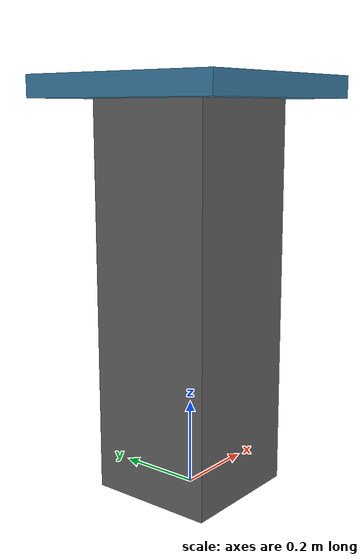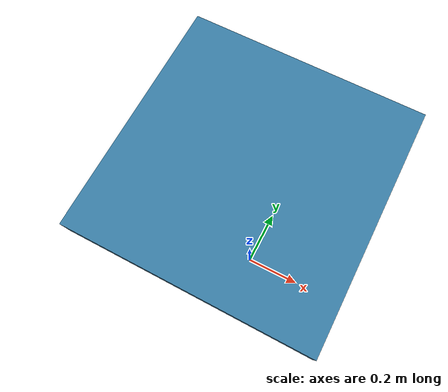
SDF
<?xml version="1.0"?>
<sdf version="1.9">
  <model name="contact_panel">
    <static>true</static>

    <link name="panel">
      <pose>0 0 0.925 0 0 0</pose>
      <collision name="collision">
        <geometry>
          <box>
            <size>0.50 0.50 0.05</size>
          </box>
        </geometry>
        <surface>
          <friction>
            <ode>
              <mu>0.4</mu>
              <mu2>0.4</mu2>
            </ode>
          </friction>
          <contact>
            <ode>
              <kp>1000000.0</kp>
              <kd>100.0</kd>
              <max_vel>0.01</max_vel>
              <min_depth>0.0005</min_depth>
            </ode>
          </contact>
        </surface>
      </collision>
      <visual name="visual">
        <geometry>
          <box>
            <size>0.50 0.50 0.05</size>
          </box>
        </geometry>
        <material>
          <ambient>0.15 0.30 0.40 1</ambient>
          <diffuse>0.20 0.45 0.60 1</diffuse>
          <specular>0.30 0.30 0.30 1</specular>
        </material>
      </visual>
    </link>

    <link name="pedestal">
      <pose>0 0 0.45 0 0 0</pose>
      <collision name="collision">
        <geometry>
          <box>
            <size>0.30 0.30 0.90</size>
          </box>
        </geometry>
      </collision>
      <visual name="visual">
        <geometry>
          <box>
            <size>0.30 0.30 0.90</size>
          </box>
        </geometry>
        <material>
          <ambient>0.25 0.25 0.25 1</ambient>
          <diffuse>0.35 0.35 0.35 1</diffuse>
        </material>
      </visual>
    </link>
  </model>
</sdf>
